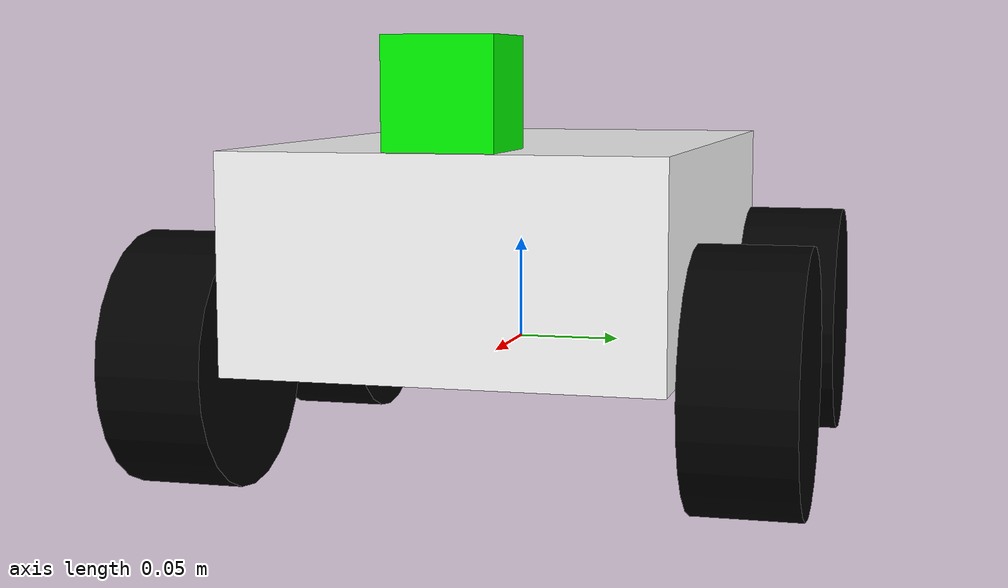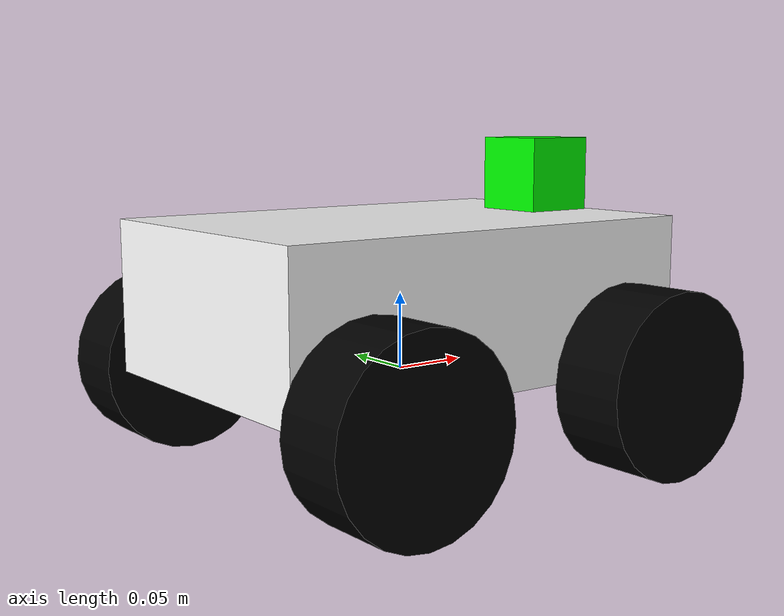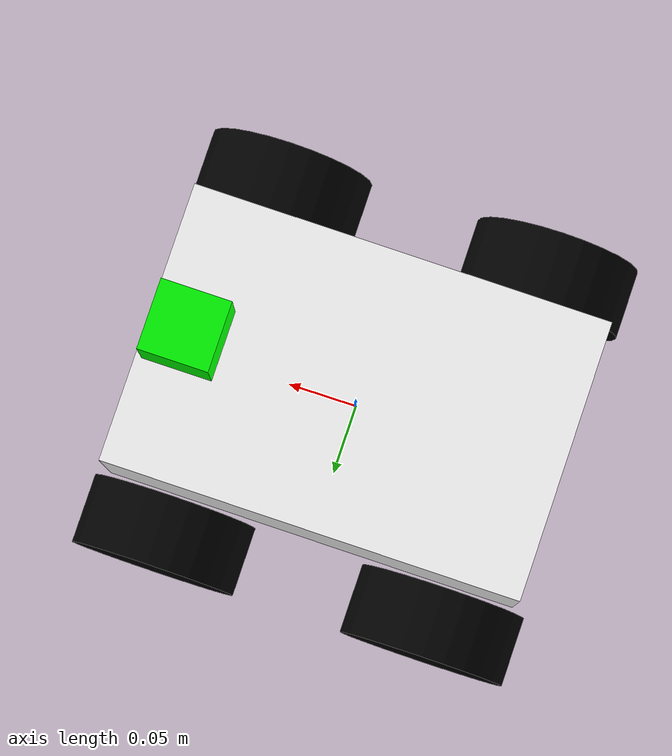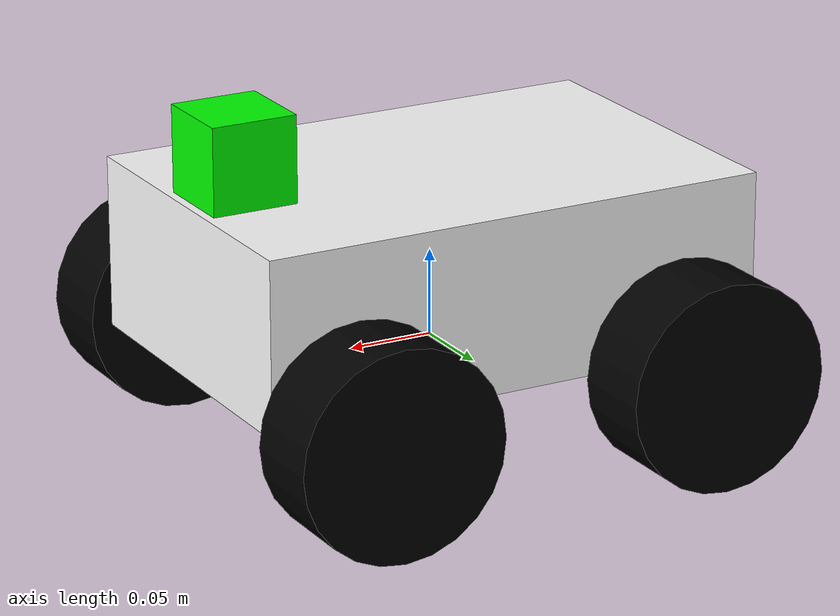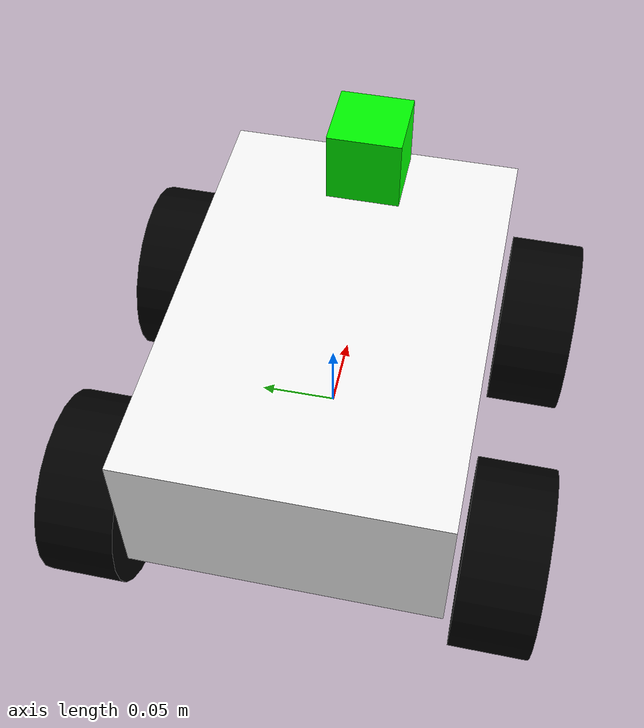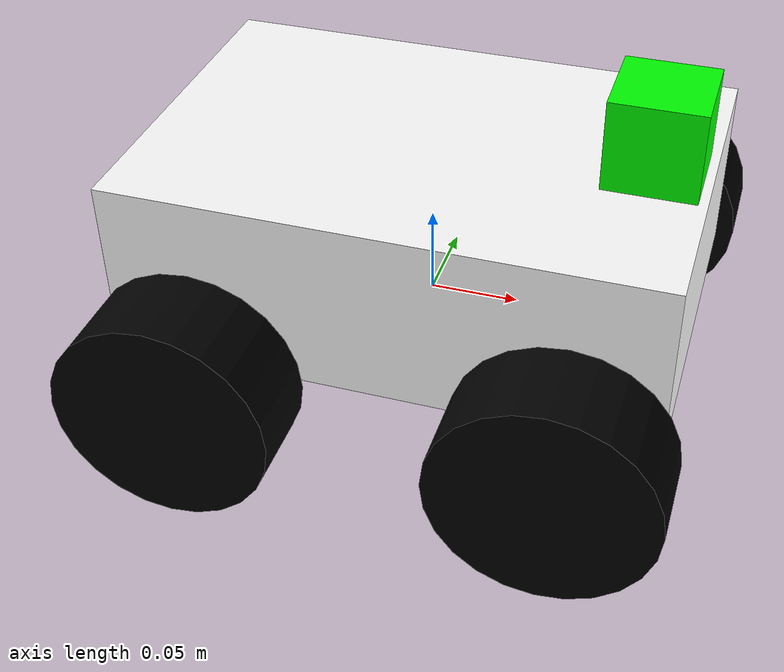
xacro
<?xml version="1.0"?>

<robot name="robot" xmlns:xacro="http://www.ros.org/wiki/xacro">

  <xacro:property name="length_wheel" value="0.05" />
  <xacro:property name="radius_wheel" value="0.06" />
  <xacro:property name="PI" value="3.1415926"/>
  <xacro:macro name="wheel_inertial" params="mass">
    <inertial>
      <mass value="${mass}" />
      <inertia ixx="0.00055" ixy="0.0" ixz="0.0"
               iyy="0.00055" iyz="0.0"
               izz="0.0009" />
    </inertial>
  </xacro:macro>

  <!-- base_link to livox_frame -->
  <xacro:arg name="xyz" default="0.12 0.0 0.175" />
  <xacro:arg name="rpy" default="0 0 0" />

  <link name="base_link">
    <visual>
      <geometry>
        <box size="0.2 .3 .1"/>
      </geometry>
      <origin rpy="0 0 ${PI/2}" xyz="0 0 0.05"/>
      <material name="white">
        <color rgba="1 1 1 1"/>
      </material>
    </visual>
    <collision>
      <geometry>
        <box size="0.2 .3 0.1"/>
      </geometry>
      <origin rpy="0 0 ${PI/2}" xyz="0 0 0.05"/>
    </collision>
    <inertial>
      <mass value="8.2"/>
      <inertia ixx="0.0683" ixy="0" ixz="0"
               iyy="0.0342" iyz="0"
               izz="0.0888" />
    </inertial>
  </link>

  <link name="wheel_1">
    <visual>
      <geometry>
        <cylinder length="${length_wheel}" radius="${radius_wheel}"/>
      </geometry>
      <origin rpy="0 0 0" xyz="0 0 0"/>
      <material name="black">
        <color rgba="0 0 0 1"/>
      </material>
    </visual>
    <collision>
      <geometry>
        <cylinder length="${length_wheel}" radius="${radius_wheel}"/>
      </geometry>
    </collision>
    <mu1>1.0</mu1>
    <mu2>1.0</mu2>
    <xacro:wheel_inertial mass="0.5"/>
  </link>

  <link name="wheel_2">
    <visual>
      <geometry>
        <cylinder length="${length_wheel}" radius="${radius_wheel}"/>
      </geometry>
      <origin rpy="0 0 0" xyz="0 0 0"/>
      <material name="black"/>
    </visual>
    <collision>
      <geometry>
        <cylinder length="${length_wheel}" radius="${radius_wheel}"/>
      </geometry>
    </collision>
    <mu1>1.0</mu1>
    <mu2>1.0</mu2>
    <xacro:wheel_inertial mass="0.5"/>
  </link>

  <link name="wheel_3">
    <visual>
      <geometry>
        <cylinder length="${length_wheel}" radius="${radius_wheel}"/>
      </geometry>
      <origin rpy="0 0 0" xyz="0 0 0"/>
      <material name="black"/>
    </visual>
    <collision>
      <geometry>
        <cylinder length="${length_wheel}" radius="${radius_wheel}"/>
      </geometry>
    </collision>
    <mu1>1.0</mu1>
    <mu2>1.0</mu2>
    <xacro:wheel_inertial mass="0.5"/>
  </link>

  <link name="wheel_4">
    <visual>
      <geometry>
        <cylinder length="${length_wheel}" radius="${radius_wheel}"/>
      </geometry>
      <origin rpy="0 0 0" xyz="0 0 0" />
      <material name="black"/>
    </visual>
    <collision>
      <geometry>
        <cylinder length="${length_wheel}" radius="${radius_wheel}"/>
      </geometry>
    </collision>
    <mu1>1.0</mu1>
    <mu2>1.0</mu2>
    <xacro:wheel_inertial mass="0.5"/>
  </link>

  <joint name="base_to_wheel1" type="continuous">
    <parent link="base_link"/>
    <child link="wheel_1"/>
    <origin rpy="${-PI/2} 0 0" xyz="0.1 0.13 0"/>
    <axis xyz="0 0 1" />
  </joint>

  <joint name="base_to_wheel2" type="continuous">
    <axis xyz="0 0 1" />
    <anchor xyz="0 0 0" />
    <limit effort="100" velocity="100" />
    <parent link="base_link"/>
    <child link="wheel_2"/>
    <origin rpy="${-PI/2} 0 0" xyz="-0.1 0.13 0"/>
  </joint>

  <joint name="base_to_wheel3" type="continuous">
    <parent link="base_link"/>
    <axis xyz="0 0 1" />
    <child link="wheel_3"/>
    <origin rpy="${-PI/2} 0 0" xyz="0.1 -0.13 0"/>
  </joint>

  <joint name="base_to_wheel4" type="continuous">
    <parent link="base_link"/>
    <axis xyz="0 0 1" />
    <child link="wheel_4"/>
    <origin rpy="${-PI/2} 0 0" xyz="-0.1 -0.13 0"/>
  </joint>

  <!-- IMU joint -->
  <joint name="imu_joint" type="fixed">
    <axis xyz="0 1 0" />
    <origin xyz="0.12 0 0.125" rpy="0 0 0"/>
    <parent link="base_link"/>
    <child link="imu_link"/>
  </joint>

  <!-- IMU -->
  <link name="imu_link">
    <collision>
      <origin xyz="0 0 0" rpy="0 0 0"/>
      <geometry>
        <box size="0.05 0.05 0.05"/>
      </geometry>
    </collision>
    <visual>
      <origin xyz="0 0 0" rpy="0 0 0"/>
      <geometry>
        <box size="0.05 0.05 0.05"/>
      </geometry>
      <material name="green">
        <color rgba="0 1 0 1"/>
      </material>
    </visual>
    <inertial>
      <mass value="1e-2" />
      <origin xyz="0 0 0" rpy="0 0 0"/>
      <inertia ixx="1e-6" ixy="0" ixz="0" iyy="1e-6" iyz="0" izz="1e-6" />
    </inertial>
  </link>

  <!-- Robot Plugins-->
  <!-- https://gazebosim.org/docs/fortress/moving_robot/ -->
  <gazebo>
    <plugin filename="libignition-gazebo-sensors-system.so"
            name="ignition::gazebo::systems::Sensors">
        <render_engine>ogre2</render_engine>
    </plugin>
    <plugin filename="libignition-gazebo-user-commands-system.so"
            name="ignition::gazebo::systems::UserCommands">
    </plugin>
    <!--shows the scene in the GUI-->
    <plugin filename="libignition-gazebo-scene-broadcaster-system.so"
            name="ignition::gazebo::systems::SceneBroadcaster">
    </plugin>

    <!-- DiffDrive plugin -->
    <!-- can be changed to libignition-gazebo-mecanum-drive-system.so for mecanum drive, there's even a wheel-slip plugin -->
    <plugin filename="libignition-gazebo-diff-drive-system.so"
            name="ignition::gazebo::systems::DiffDrive">
        <left_joint>base_to_wheel1</left_joint> <left_joint>base_to_wheel2</left_joint>
        <right_joint>base_to_wheel3</right_joint>
        <right_joint>base_to_wheel4</right_joint>
        <wheel_separation>0.39</wheel_separation>
        <wheel_radius>${radius_wheel}</wheel_radius>
        <odom_publish_frequency>50</odom_publish_frequency>
        <use_sim_time>true</use_sim_time>
        <topic>cmd_vel</topic>
        <odom_topic>odom</odom_topic>
        <tf_topic>/tf</tf_topic>
        <frame_id>odom</frame_id>
        <child_frame_id>base_link</child_frame_id>
    </plugin>
    <!-- Moving Forward with Arrow Key Control plugin -->
    <plugin filename="libignition-gazebo-triggered-publisher-system.so"
            name="ignition::gazebo::systems::TriggeredPublisher">
        <input type="ignition.msgs.Int32" topic="/keyboard/keypress">
            <match field="data">16777235</match>
        </input>
        <output type="ignition.msgs.Twist" topic="/cmd_vel">
            linear: {x: 0.5}, angular: {z: 0.0}
        </output>
    </plugin>
    <!-- Moving Backward with Arrow Key Control plugin -->
    <plugin filename="libignition-gazebo-triggered-publisher-system.so"
            name="ignition::gazebo::systems::TriggeredPublisher">
        <input type="ignition.msgs.Int32" topic="/keyboard/keypress">
            <match field="data">16777237</match>
        </input>
        <output type="ignition.msgs.Twist" topic="/cmd_vel">
            linear: {x: -0.5}, angular: {z: 0.0}
        </output>
    </plugin>
    <!-- Turning Left with Arrow Key Control plugin -->
    <plugin filename="libignition-gazebo-triggered-publisher-system.so"
            name="ignition::gazebo::systems::TriggeredPublisher">
        <input type="ignition.msgs.Int32" topic="/keyboard/keypress">
            <match field="data">16777234</match>
        </input>
        <output type="ignition.msgs.Twist" topic="/cmd_vel">
            linear: {x: 0.0}, angular: {z: 0.5}
        </output>
    </plugin>
    <!-- Turning Right with Arrow Key Control plugin -->
    <plugin filename="libignition-gazebo-triggered-publisher-system.so"
            name="ignition::gazebo::systems::TriggeredPublisher">
        <input type="ignition.msgs.Int32" topic="/keyboard/keypress">
            <match field="data">16777236</match>
        </input>
        <output type="ignition.msgs.Twist" topic="/cmd_vel">
            linear: {x: 0.0}, angular: {z: -0.5}
        </output>
    </plugin>
    <!-- Stop with Key '1' Control plugin -->
    <plugin filename="libignition-gazebo-triggered-publisher-system.so"
            name="ignition::gazebo::systems::TriggeredPublisher">
        <input type="ignition.msgs.Int32" topic="/keyboard/keypress">
            <match field="data">49</match>
        </input>
        <output type="ignition.msgs.Twist" topic="/cmd_vel">
            linear: {x: 0.0}, angular: {z: 0.0}
        </output>
    </plugin>
  </gazebo>

  <!-- link plugins -->
  <!-- there's also an odometry-publish-system plugin for publishing odom topic -->

  <!-- mid360_imu sensor and its plugin -->
  <!-- topic name in ign topic -l: /world/default/model/testbot/link/dummy/sensor/mid360_imu/imu -->
  <gazebo reference="imu_link">
    <sensor name="mid360_imu" type="imu">
      <topic>/imu</topic> <!-- if without this line, find following topic name can be found in ign topic -l: /world/default/model/testbot/link/dummy/sensor/mid360_imu/imu -->
      <always_on>true</always_on>
      <update_rate>100</update_rate>
      <plugin name="ignition::gazebo::systems::Imu" filename="libignition-gazebo-imu-system.so">
        <frame_name>imu_link</frame_name>
      </plugin>
    </sensor>
  </gazebo>

  <gazebo reference="imu_link">
    <sensor type="gpu_lidar" name="livox_mid360">
      <ignition_frame_id>imu_link</ignition_frame_id>

      <topic>/lidar_points</topic>

      <pose>0 0 0 0 0 0</pose>
      <visualize>true</visualize>
      <update_rate>10</update_rate>
      <always_on>true</always_on>

      <lidar>
        <scan>
          <horizontal>
            <samples>2000</samples>
            <resolution>1.0</resolution>
            <min_angle>-${PI}</min_angle>
            <max_angle>${PI}</max_angle>
          </horizontal>
          <vertical>
            <samples>100</samples>
            <resolution>1.0</resolution>
            <min_angle>-0.515</min_angle>
            <max_angle>0.515</max_angle>
          </vertical>
        </scan>
        <range>
          <min>0.05</min>
          <max>70.0</max>
          <resolution>0.01</resolution>
        </range>
        <noise>
          <type>gaussian</type>
          <mean>0.0</mean>
          <stddev>0.02</stddev>
        </noise>
      </lidar>
    </sensor>
  </gazebo>

</robot>
